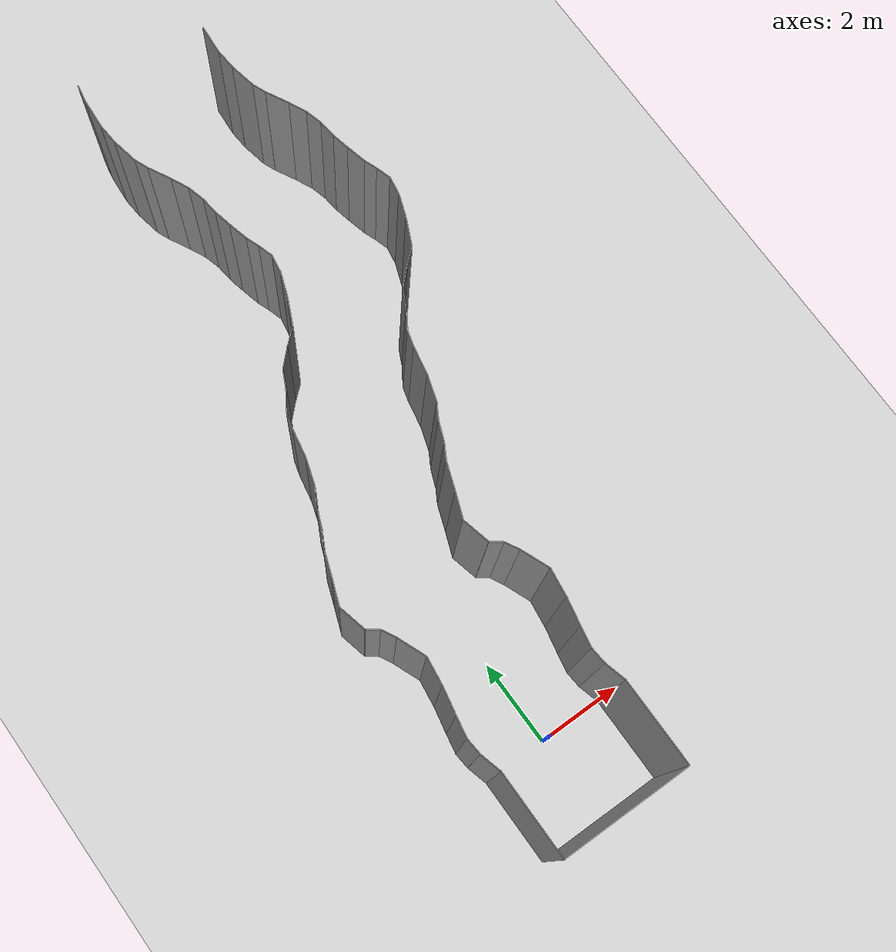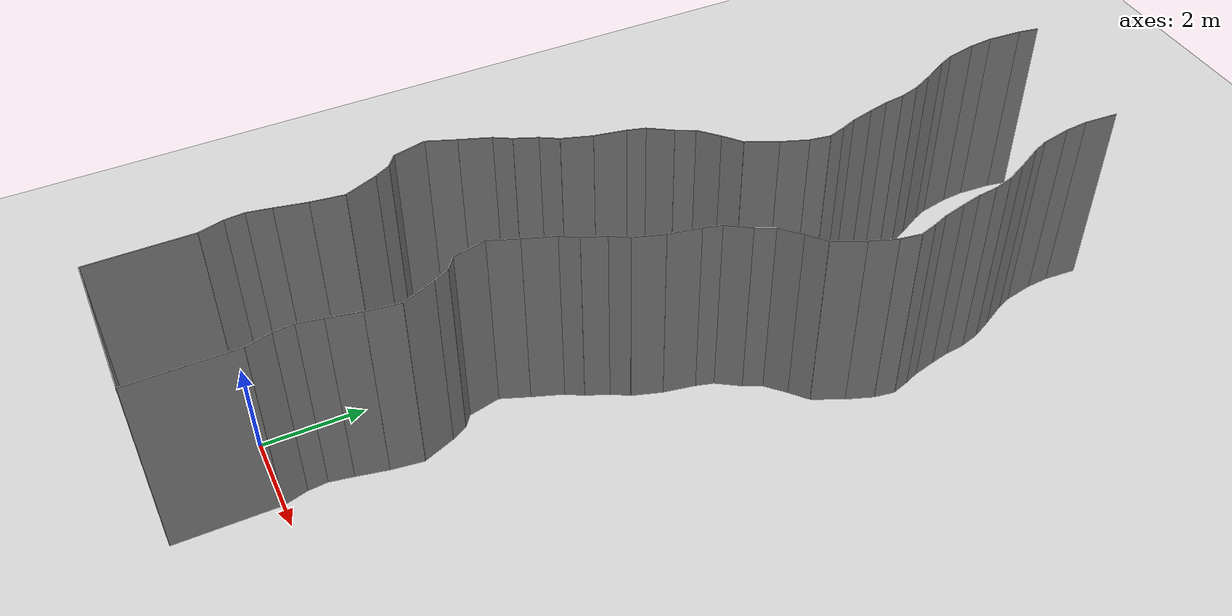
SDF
<sdf version="1.6">
 <world name="default">
  <model name="ground_plane">
   <static>1</static>
   <link name="link">
    <collision name="collision">
     <geometry><plane><normal>0 0 1</normal><size>200 200</size></plane></geometry>
     <surface><friction><ode><mu>100</mu><mu2>50</mu2></ode></friction></surface>
    </collision>
    <visual name="visual">
     <cast_shadows>0</cast_shadows>
     <geometry><plane><normal>0 0 1</normal><size>200 200</size></plane></geometry>
     <material>
      <script><uri>file://media/materials/scripts/gazebo.material</uri><name>Gazebo/Grey</name></script>
     </material>
    </visual>
   </link>
   <pose>0 100 0 0 -0 0</pose>
  </model>
  <model name="wall_back">
   <static>1</static>
   <pose>0.0 -2 2 0.0 0 0.0</pose>
   <link name="link">
    <collision name="collision"><geometry><box><size>3 0.02 4</size></box></geometry></collision>
    <visual name="visual">
     <material>
      <script><name>Gazebo/Grey</name><uri>file://media/materials/scripts/gazebo.material</uri></script>
     </material>
     <geometry><box><size>3 0.02 4</size></box></geometry>
    </visual>
   </link>
  </model>
  <model name="wall_left">
   <static>1</static>
   <pose>1.5 -1 2 0 0 0.00</pose>
   <link name="link">
    <collision name="collision"><geometry><box><size>0.02 2 4</size></box></geometry></collision>
    <visual name="visual">
     <material>
      <script><name>Gazebo/Grey</name><uri>file://media/materials/scripts/gazebo.material</uri></script>
     </material>
     <geometry><box><size>0.02 2 4</size></box></geometry>
    </visual>
   </link>
  </model>
  <model name="wall_right">
   <static>1</static>
   <pose>-1.5 -1 2 0 0 0.00</pose>
   <link name="link">
    <collision name="collision"><geometry><box><size>0.02 2 4</size></box></geometry></collision>
    <visual name="visual">
     <material>
      <script><name>Gazebo/Grey</name><uri>file://media/materials/scripts/gazebo.material</uri></script>
     </material>
     <geometry><box><size>0.02 2 4</size></box></geometry>
    </visual>
   </link>
  </model>
  <model name="wall_0">
   <static>1</static>
   <pose>-1.565739611500595 0.24088608216315852 2 0 0 0.2664197645561969</pose>
   <link name="link">
    <collision name="collision"><geometry><box><size>0.02 0.499390833317 4</size></box></geometry></collision>
    <visual name="visual">
     <material>
      <script><name>Gazebo/Grey</name><uri>file://media/materials/scripts/gazebo.material</uri></script>
     </material>
     <geometry><box><size>0.02 0.499390833317 4</size></box></geometry>
    </visual>
   </link>
  </model>
  <model name="wall_1">
   <static>1</static>
   <pose>1.434260388499405 0.24088608216315852 2 0 0 0.2664197645561969</pose>
   <link name="link">
    <collision name="collision"><geometry><box><size>0.02 0.499390833317 4</size></box></geometry></collision>
    <visual name="visual">
     <material>
      <script><name>Gazebo/Grey</name><uri>file://media/materials/scripts/gazebo.material</uri></script>
     </material>
     <geometry><box><size>0.02 0.499390833317 4</size></box></geometry>
    </visual>
   </link>
  </model>
  <model name="wall_2">
   <static>1</static>
   <pose>-1.6483853456226922 0.6741960241709141 2 0 0 0.08763374060429269</pose>
   <link name="link">
    <collision name="collision"><geometry><box><size>0.02 0.386330215332 4</size></box></geometry></collision>
    <visual name="visual">
     <material>
      <script><name>Gazebo/Grey</name><uri>file://media/materials/scripts/gazebo.material</uri></script>
     </material>
     <geometry><box><size>0.02 0.386330215332 4</size></box></geometry>
    </visual>
   </link>
  </model>
  <model name="wall_3">
   <static>1</static>
   <pose>1.3516146543773078 0.6741960241709141 2 0 0 0.08763374060429269</pose>
   <link name="link">
    <collision name="collision"><geometry><box><size>0.02 0.386330215332 4</size></box></geometry></collision>
    <visual name="visual">
     <material>
      <script><name>Gazebo/Grey</name><uri>file://media/materials/scripts/gazebo.material</uri></script>
     </material>
     <geometry><box><size>0.02 0.386330215332 4</size></box></geometry>
    </visual>
   </link>
  </model>
  <model name="wall_4">
   <static>1</static>
   <pose>-1.6224939898118325 1.0997063646286278 2 0 0 -0.18158938076499426</pose>
   <link name="link">
    <collision name="collision"><geometry><box><size>0.02 0.473965954916 4</size></box></geometry></collision>
    <visual name="visual">
     <material>
      <script><name>Gazebo/Grey</name><uri>file://media/materials/scripts/gazebo.material</uri></script>
     </material>
     <geometry><box><size>0.02 0.473965954916 4</size></box></geometry>
    </visual>
   </link>
  </model>
  <model name="wall_5">
   <static>1</static>
   <pose>1.3775060101881675 1.0997063646286278 2 0 0 -0.18158938076499426</pose>
   <link name="link">
    <collision name="collision"><geometry><box><size>0.02 0.473965954916 4</size></box></geometry></collision>
    <visual name="visual">
     <material>
      <script><name>Gazebo/Grey</name><uri>file://media/materials/scripts/gazebo.material</uri></script>
     </material>
     <geometry><box><size>0.02 0.473965954916 4</size></box></geometry>
    </visual>
   </link>
  </model>
  <model name="wall_6">
   <static>1</static>
   <pose>-1.5172936481979964 1.6427296880698645 2 0 0 -0.1986842445359933</pose>
   <link name="link">
    <collision name="collision"><geometry><box><size>0.02 0.632313099265 4</size></box></geometry></collision>
    <visual name="visual">
     <material>
      <script><name>Gazebo/Grey</name><uri>file://media/materials/scripts/gazebo.material</uri></script>
     </material>
     <geometry><box><size>0.02 0.632313099265 4</size></box></geometry>
    </visual>
   </link>
  </model>
  <model name="wall_7">
   <static>1</static>
   <pose>1.4827063518020036 1.6427296880698645 2 0 0 -0.1986842445359933</pose>
   <link name="link">
    <collision name="collision"><geometry><box><size>0.02 0.632313099265 4</size></box></geometry></collision>
    <visual name="visual">
     <material>
      <script><name>Gazebo/Grey</name><uri>file://media/materials/scripts/gazebo.material</uri></script>
     </material>
     <geometry><box><size>0.02 0.632313099265 4</size></box></geometry>
    </visual>
   </link>
  </model>
  <model name="wall_8">
   <static>1</static>
   <pose>-1.4136420460431394 2.273343459773019 2 0 0 -0.12792773836013294</pose>
   <link name="link">
    <collision name="collision"><geometry><box><size>0.02 0.646637923972 4</size></box></geometry></collision>
    <visual name="visual">
     <material>
      <script><name>Gazebo/Grey</name><uri>file://media/materials/scripts/gazebo.material</uri></script>
     </material>
     <geometry><box><size>0.02 0.646637923972 4</size></box></geometry>
    </visual>
   </link>
  </model>
  <model name="wall_9">
   <static>1</static>
   <pose>1.5863579539568606 2.273343459773019 2 0 0 -0.12792773836013294</pose>
   <link name="link">
    <collision name="collision"><geometry><box><size>0.02 0.646637923972 4</size></box></geometry></collision>
    <visual name="visual">
     <material>
      <script><name>Gazebo/Grey</name><uri>file://media/materials/scripts/gazebo.material</uri></script>
     </material>
     <geometry><box><size>0.02 0.646637923972 4</size></box></geometry>
    </visual>
   </link>
  </model>
  <model name="wall_10">
   <static>1</static>
   <pose>-1.5021101102420251 2.9108111238589625 2 0 0 0.38864477231435324</pose>
   <link name="link">
    <collision name="collision"><geometry><box><size>0.02 0.684639522495 4</size></box></geometry></collision>
    <visual name="visual">
     <material>
      <script><name>Gazebo/Grey</name><uri>file://media/materials/scripts/gazebo.material</uri></script>
     </material>
     <geometry><box><size>0.02 0.684639522495 4</size></box></geometry>
    </visual>
   </link>
  </model>
  <model name="wall_11">
   <static>1</static>
   <pose>1.4978898897579749 2.9108111238589625 2 0 0 0.38864477231435324</pose>
   <link name="link">
    <collision name="collision"><geometry><box><size>0.02 0.684639522495 4</size></box></geometry></collision>
    <visual name="visual">
     <material>
      <script><name>Gazebo/Grey</name><uri>file://media/materials/scripts/gazebo.material</uri></script>
     </material>
     <geometry><box><size>0.02 0.684639522495 4</size></box></geometry>
    </visual>
   </link>
  </model>
  <model name="wall_12">
   <static>1</static>
   <pose>-1.7144954054000514 3.380717711754754 2 0 0 0.4950621232531164</pose>
   <link name="link">
    <collision name="collision"><geometry><box><size>0.02 0.348014619869 4</size></box></geometry></collision>
    <visual name="visual">
     <material>
      <script><name>Gazebo/Grey</name><uri>file://media/materials/scripts/gazebo.material</uri></script>
     </material>
     <geometry><box><size>0.02 0.348014619869 4</size></box></geometry>
    </visual>
   </link>
  </model>
  <model name="wall_13">
   <static>1</static>
   <pose>1.2855045945999486 3.380717711754754 2 0 0 0.4950621232531164</pose>
   <link name="link">
    <collision name="collision"><geometry><box><size>0.02 0.348014619869 4</size></box></geometry></collision>
    <visual name="visual">
     <material>
      <script><name>Gazebo/Grey</name><uri>file://media/materials/scripts/gazebo.material</uri></script>
     </material>
     <geometry><box><size>0.02 0.348014619869 4</size></box></geometry>
    </visual>
   </link>
  </model>
  <model name="wall_14">
   <static>1</static>
   <pose>-1.9208575377017132 3.6237284901054827 2 0 0 0.9423389882361022</pose>
   <link name="link">
    <collision name="collision"><geometry><box><size>0.02 0.305818340294 4</size></box></geometry></collision>
    <visual name="visual">
     <material>
      <script><name>Gazebo/Grey</name><uri>file://media/materials/scripts/gazebo.material</uri></script>
     </material>
     <geometry><box><size>0.02 0.305818340294 4</size></box></geometry>
    </visual>
   </link>
  </model>
  <model name="wall_15">
   <static>1</static>
   <pose>1.0791424622982868 3.6237284901054827 2 0 0 0.9423389882361022</pose>
   <link name="link">
    <collision name="collision"><geometry><box><size>0.02 0.305818340294 4</size></box></geometry></collision>
    <visual name="visual">
     <material>
      <script><name>Gazebo/Grey</name><uri>file://media/materials/scripts/gazebo.material</uri></script>
     </material>
     <geometry><box><size>0.02 0.305818340294 4</size></box></geometry>
    </visual>
   </link>
  </model>
  <model name="wall_16">
   <static>1</static>
   <pose>-2.121650649095559 4.036127716997495 2 0 0 0.2346606584070033</pose>
   <link name="link">
    <collision name="collision"><geometry><box><size>0.02 0.663184296406 4</size></box></geometry></collision>
    <visual name="visual">
     <material>
      <script><name>Gazebo/Grey</name><uri>file://media/materials/scripts/gazebo.material</uri></script>
     </material>
     <geometry><box><size>0.02 0.663184296406 4</size></box></geometry>
    </visual>
   </link>
  </model>
  <model name="wall_17">
   <static>1</static>
   <pose>0.8783493509044411 4.036127716997495 2 0 0 0.2346606584070033</pose>
   <link name="link">
    <collision name="collision"><geometry><box><size>0.02 0.663184296406 4</size></box></geometry></collision>
    <visual name="visual">
     <material>
      <script><name>Gazebo/Grey</name><uri>file://media/materials/scripts/gazebo.material</uri></script>
     </material>
     <geometry><box><size>0.02 0.663184296406 4</size></box></geometry>
    </visual>
   </link>
  </model>
  <model name="wall_18">
   <static>1</static>
   <pose>-2.091013936563034 4.639162786583809 2 0 0 -0.36667606427582305</pose>
   <link name="link">
    <collision name="collision"><geometry><box><size>0.02 0.601014466567 4</size></box></geometry></collision>
    <visual name="visual">
     <material>
      <script><name>Gazebo/Grey</name><uri>file://media/materials/scripts/gazebo.material</uri></script>
     </material>
     <geometry><box><size>0.02 0.601014466567 4</size></box></geometry>
    </visual>
   </link>
  </model>
  <model name="wall_19">
   <static>1</static>
   <pose>0.908986063436966 4.639162786583809 2 0 0 -0.36667606427582305</pose>
   <link name="link">
    <collision name="collision"><geometry><box><size>0.02 0.601014466567 4</size></box></geometry></collision>
    <visual name="visual">
     <material>
      <script><name>Gazebo/Grey</name><uri>file://media/materials/scripts/gazebo.material</uri></script>
     </material>
     <geometry><box><size>0.02 0.601014466567 4</size></box></geometry>
    </visual>
   </link>
  </model>
  <model name="wall_20">
   <static>1</static>
   <pose>-1.8745241503220937 5.220819056604774 2 0 0 -0.3465795173068685</pose>
   <link name="link">
    <collision name="collision"><geometry><box><size>0.02 0.640324648395 4</size></box></geometry></collision>
    <visual name="visual">
     <material>
      <script><name>Gazebo/Grey</name><uri>file://media/materials/scripts/gazebo.material</uri></script>
     </material>
     <geometry><box><size>0.02 0.640324648395 4</size></box></geometry>
    </visual>
   </link>
  </model>
  <model name="wall_21">
   <static>1</static>
   <pose>1.1254758496779063 5.220819056604774 2 0 0 -0.3465795173068685</pose>
   <link name="link">
    <collision name="collision"><geometry><box><size>0.02 0.640324648395 4</size></box></geometry></collision>
    <visual name="visual">
     <material>
      <script><name>Gazebo/Grey</name><uri>file://media/materials/scripts/gazebo.material</uri></script>
     </material>
     <geometry><box><size>0.02 0.640324648395 4</size></box></geometry>
    </visual>
   </link>
  </model>
  <model name="wall_22">
   <static>1</static>
   <pose>-1.6711643647316854 5.685106192930393 2 0 0 -0.5254573671960013</pose>
   <link name="link">
    <collision name="collision"><geometry><box><size>0.02 0.377211075557 4</size></box></geometry></collision>
    <visual name="visual">
     <material>
      <script><name>Gazebo/Grey</name><uri>file://media/materials/scripts/gazebo.material</uri></script>
     </material>
     <geometry><box><size>0.02 0.377211075557 4</size></box></geometry>
    </visual>
   </link>
  </model>
  <model name="wall_23">
   <static>1</static>
   <pose>1.3288356352683146 5.685106192930393 2 0 0 -0.5254573671960013</pose>
   <link name="link">
    <collision name="collision"><geometry><box><size>0.02 0.377211075557 4</size></box></geometry></collision>
    <visual name="visual">
     <material>
      <script><name>Gazebo/Grey</name><uri>file://media/materials/scripts/gazebo.material</uri></script>
     </material>
     <geometry><box><size>0.02 0.377211075557 4</size></box></geometry>
    </visual>
   </link>
  </model>
  <model name="wall_24">
   <static>1</static>
   <pose>-1.4870901184349976 6.069999245519834 2 0 0 -0.3835177855792076</pose>
   <link name="link">
    <collision name="collision"><geometry><box><size>0.02 0.478202283776 4</size></box></geometry></collision>
    <visual name="visual">
     <material>
      <script><name>Gazebo/Grey</name><uri>file://media/materials/scripts/gazebo.material</uri></script>
     </material>
     <geometry><box><size>0.02 0.478202283776 4</size></box></geometry>
    </visual>
   </link>
  </model>
  <model name="wall_25">
   <static>1</static>
   <pose>1.5129098815650024 6.069999245519834 2 0 0 -0.3835177855792076</pose>
   <link name="link">
    <collision name="collision"><geometry><box><size>0.02 0.478202283776 4</size></box></geometry></collision>
    <visual name="visual">
     <material>
      <script><name>Gazebo/Grey</name><uri>file://media/materials/scripts/gazebo.material</uri></script>
     </material>
     <geometry><box><size>0.02 0.478202283776 4</size></box></geometry>
    </visual>
   </link>
  </model>
  <model name="wall_26">
   <static>1</static>
   <pose>-1.2980619678183172 6.460374131454251 2 0 0 -0.5332999212025807</pose>
   <link name="link">
    <collision name="collision"><geometry><box><size>0.02 0.391677572917 4</size></box></geometry></collision>
    <visual name="visual">
     <material>
      <script><name>Gazebo/Grey</name><uri>file://media/materials/scripts/gazebo.material</uri></script>
     </material>
     <geometry><box><size>0.02 0.391677572917 4</size></box></geometry>
    </visual>
   </link>
  </model>
  <model name="wall_27">
   <static>1</static>
   <pose>1.7019380321816828 6.460374131454251 2 0 0 -0.5332999212025807</pose>
   <link name="link">
    <collision name="collision"><geometry><box><size>0.02 0.391677572917 4</size></box></geometry></collision>
    <visual name="visual">
     <material>
      <script><name>Gazebo/Grey</name><uri>file://media/materials/scripts/gazebo.material</uri></script>
     </material>
     <geometry><box><size>0.02 0.391677572917 4</size></box></geometry>
    </visual>
   </link>
  </model>
  <model name="wall_28">
   <static>1</static>
   <pose>-1.104667693843315 6.921692049198197 2 0 0 -0.31025566221828826</pose>
   <link name="link">
    <collision name="collision"><geometry><box><size>0.02 0.614697285239 4</size></box></geometry></collision>
    <visual name="visual">
     <material>
      <script><name>Gazebo/Grey</name><uri>file://media/materials/scripts/gazebo.material</uri></script>
     </material>
     <geometry><box><size>0.02 0.614697285239 4</size></box></geometry>
    </visual>
   </link>
  </model>
  <model name="wall_29">
   <static>1</static>
   <pose>1.895332306156685 6.921692049198197 2 0 0 -0.31025566221828826</pose>
   <link name="link">
    <collision name="collision"><geometry><box><size>0.02 0.614697285239 4</size></box></geometry></collision>
    <visual name="visual">
     <material>
      <script><name>Gazebo/Grey</name><uri>file://media/materials/scripts/gazebo.material</uri></script>
     </material>
     <geometry><box><size>0.02 0.614697285239 4</size></box></geometry>
    </visual>
   </link>
  </model>
  <model name="wall_30">
   <static>1</static>
   <pose>-0.9524156585972603 7.527631878212156 2 0 0 -0.18436278185102173</pose>
   <link name="link">
    <collision name="collision"><geometry><box><size>0.02 0.637331445591 4</size></box></geometry></collision>
    <visual name="visual">
     <material>
      <script><name>Gazebo/Grey</name><uri>file://media/materials/scripts/gazebo.material</uri></script>
     </material>
     <geometry><box><size>0.02 0.637331445591 4</size></box></geometry>
    </visual>
   </link>
  </model>
  <model name="wall_31">
   <static>1</static>
   <pose>2.0475843414027395 7.527631878212156 2 0 0 -0.18436278185102173</pose>
   <link name="link">
    <collision name="collision"><geometry><box><size>0.02 0.637331445591 4</size></box></geometry></collision>
    <visual name="visual">
     <material>
      <script><name>Gazebo/Grey</name><uri>file://media/materials/scripts/gazebo.material</uri></script>
     </material>
     <geometry><box><size>0.02 0.637331445591 4</size></box></geometry>
    </visual>
   </link>
  </model>
  <model name="wall_32">
   <static>1</static>
   <pose>-0.8461826182124886 8.015372793796 2 0 0 -0.26748370132998434</pose>
   <link name="link">
    <collision name="collision"><geometry><box><size>0.02 0.361817663133 4</size></box></geometry></collision>
    <visual name="visual">
     <material>
      <script><name>Gazebo/Grey</name><uri>file://media/materials/scripts/gazebo.material</uri></script>
     </material>
     <geometry><box><size>0.02 0.361817663133 4</size></box></geometry>
    </visual>
   </link>
  </model>
  <model name="wall_33">
   <static>1</static>
   <pose>2.1538173817875115 8.015372793796 2 0 0 -0.26748370132998434</pose>
   <link name="link">
    <collision name="collision"><geometry><box><size>0.02 0.361817663133 4</size></box></geometry></collision>
    <visual name="visual">
     <material>
      <script><name>Gazebo/Grey</name><uri>file://media/materials/scripts/gazebo.material</uri></script>
     </material>
     <geometry><box><size>0.02 0.361817663133 4</size></box></geometry>
    </visual>
   </link>
  </model>
  <model name="wall_34">
   <static>1</static>
   <pose>-0.6531005107113629 8.414410567422077 2 0 0 -0.574185349997685</pose>
   <link name="link">
    <collision name="collision"><geometry><box><size>0.02 0.534904384796 4</size></box></geometry></collision>
    <visual name="visual">
     <material>
      <script><name>Gazebo/Grey</name><uri>file://media/materials/scripts/gazebo.material</uri></script>
     </material>
     <geometry><box><size>0.02 0.534904384796 4</size></box></geometry>
    </visual>
   </link>
  </model>
  <model name="wall_35">
   <static>1</static>
   <pose>2.3468994892886372 8.414410567422077 2 0 0 -0.574185349997685</pose>
   <link name="link">
    <collision name="collision"><geometry><box><size>0.02 0.534904384796 4</size></box></geometry></collision>
    <visual name="visual">
     <material>
      <script><name>Gazebo/Grey</name><uri>file://media/materials/scripts/gazebo.material</uri></script>
     </material>
     <geometry><box><size>0.02 0.534904384796 4</size></box></geometry>
    </visual>
   </link>
  </model>
  <model name="wall_36">
   <static>1</static>
   <pose>-0.4227081682132432 8.815440413093574 2 0 0 -0.44945702265359894</pose>
   <link name="link">
    <collision name="collision"><geometry><box><size>0.02 0.391852804454 4</size></box></geometry></collision>
    <visual name="visual">
     <material>
      <script><name>Gazebo/Grey</name><uri>file://media/materials/scripts/gazebo.material</uri></script>
     </material>
     <geometry><box><size>0.02 0.391852804454 4</size></box></geometry>
    </visual>
   </link>
  </model>
  <model name="wall_37">
   <static>1</static>
   <pose>2.5772918317867566 8.815440413093574 2 0 0 -0.44945702265359894</pose>
   <link name="link">
    <collision name="collision"><geometry><box><size>0.02 0.391852804454 4</size></box></geometry></collision>
    <visual name="visual">
     <material>
      <script><name>Gazebo/Grey</name><uri>file://media/materials/scripts/gazebo.material</uri></script>
     </material>
     <geometry><box><size>0.02 0.391852804454 4</size></box></geometry>
    </visual>
   </link>
  </model>
  <model name="wall_38">
   <static>1</static>
   <pose>-0.16149954600914299 9.164619360388333 2 0 0 -0.7950650333283734</pose>
   <link name="link">
    <collision name="collision"><geometry><box><size>0.02 0.49329300945 4</size></box></geometry></collision>
    <visual name="visual">
     <material>
      <script><name>Gazebo/Grey</name><uri>file://media/materials/scripts/gazebo.material</uri></script>
     </material>
     <geometry><box><size>0.02 0.49329300945 4</size></box></geometry>
    </visual>
   </link>
  </model>
  <model name="wall_39">
   <static>1</static>
   <pose>2.838500453990857 9.164619360388333 2 0 0 -0.7950650333283734</pose>
   <link name="link">
    <collision name="collision"><geometry><box><size>0.02 0.49329300945 4</size></box></geometry></collision>
    <visual name="visual">
     <material>
      <script><name>Gazebo/Grey</name><uri>file://media/materials/scripts/gazebo.material</uri></script>
     </material>
     <geometry><box><size>0.02 0.49329300945 4</size></box></geometry>
    </visual>
   </link>
  </model>
  <model name="wall_40">
   <static>1</static>
   <pose>0.180669150913259 9.481449800055413 2 0 0 -0.8560927773171492</pose>
   <link name="link">
    <collision name="collision"><geometry><box><size>0.02 0.439794083715 4</size></box></geometry></collision>
    <visual name="visual">
     <material>
      <script><name>Gazebo/Grey</name><uri>file://media/materials/scripts/gazebo.material</uri></script>
     </material>
     <geometry><box><size>0.02 0.439794083715 4</size></box></geometry>
    </visual>
   </link>
  </model>
  <model name="wall_41">
   <static>1</static>
   <pose>3.180669150913259 9.481449800055413 2 0 0 -0.8560927773171492</pose>
   <link name="link">
    <collision name="collision"><geometry><box><size>0.02 0.439794083715 4</size></box></geometry></collision>
    <visual name="visual">
     <material>
      <script><name>Gazebo/Grey</name><uri>file://media/materials/scripts/gazebo.material</uri></script>
     </material>
     <geometry><box><size>0.02 0.439794083715 4</size></box></geometry>
    </visual>
   </link>
  </model>
  <model name="wall_42">
   <static>1</static>
   <pose>0.48522603566532 9.92372573289427 2 0 0 -0.4347845088825791</pose>
   <link name="link">
    <collision name="collision"><geometry><box><size>0.02 0.65748557552 4</size></box></geometry></collision>
    <visual name="visual">
     <material>
      <script><name>Gazebo/Grey</name><uri>file://media/materials/scripts/gazebo.material</uri></script>
     </material>
     <geometry><box><size>0.02 0.65748557552 4</size></box></geometry>
    </visual>
   </link>
  </model>
  <model name="wall_43">
   <static>1</static>
   <pose>3.48522603566532 9.92372573289427 2 0 0 -0.4347845088825791</pose>
   <link name="link">
    <collision name="collision"><geometry><box><size>0.02 0.65748557552 4</size></box></geometry></collision>
    <visual name="visual">
     <material>
      <script><name>Gazebo/Grey</name><uri>file://media/materials/scripts/gazebo.material</uri></script>
     </material>
     <geometry><box><size>0.02 0.65748557552 4</size></box></geometry>
    </visual>
   </link>
  </model>
  <model name="wall_44">
   <static>1</static>
   <pose>0.718601578090264 10.481962678245711 2 0 0 -0.34988975049354076</pose>
   <link name="link">
    <collision name="collision"><geometry><box><size>0.02 0.55370918265 4</size></box></geometry></collision>
    <visual name="visual">
     <material>
      <script><name>Gazebo/Grey</name><uri>file://media/materials/scripts/gazebo.material</uri></script>
     </material>
     <geometry><box><size>0.02 0.55370918265 4</size></box></geometry>
    </visual>
   </link>
  </model>
  <model name="wall_45">
   <static>1</static>
   <pose>3.718601578090264 10.481962678245711 2 0 0 -0.34988975049354076</pose>
   <link name="link">
    <collision name="collision"><geometry><box><size>0.02 0.55370918265 4</size></box></geometry></collision>
    <visual name="visual">
     <material>
      <script><name>Gazebo/Grey</name><uri>file://media/materials/scripts/gazebo.material</uri></script>
     </material>
     <geometry><box><size>0.02 0.55370918265 4</size></box></geometry>
    </visual>
   </link>
  </model>
  <model name="wall_46">
   <static>1</static>
   <pose>0.8462657989627398 10.945505000200539 2 0 0 -0.15964282527761284</pose>
   <link name="link">
    <collision name="collision"><geometry><box><size>0.02 0.412165462002 4</size></box></geometry></collision>
    <visual name="visual">
     <material>
      <script><name>Gazebo/Grey</name><uri>file://media/materials/scripts/gazebo.material</uri></script>
     </material>
     <geometry><box><size>0.02 0.412165462002 4</size></box></geometry>
    </visual>
   </link>
  </model>
  <model name="wall_47">
   <static>1</static>
   <pose>3.84626579896274 10.945505000200539 2 0 0 -0.15964282527761284</pose>
   <link name="link">
    <collision name="collision"><geometry><box><size>0.02 0.412165462002 4</size></box></geometry></collision>
    <visual name="visual">
     <material>
      <script><name>Gazebo/Grey</name><uri>file://media/materials/scripts/gazebo.material</uri></script>
     </material>
     <geometry><box><size>0.02 0.412165462002 4</size></box></geometry>
    </visual>
   </link>
  </model>
  <model name="wall_48">
   <static>1</static>
   <pose>0.8268747342737711 11.315957409230812 2 0 0 0.3027031251017241</pose>
   <link name="link">
    <collision name="collision"><geometry><box><size>0.02 0.349888364928 4</size></box></geometry></collision>
    <visual name="visual">
     <material>
      <script><name>Gazebo/Grey</name><uri>file://media/materials/scripts/gazebo.material</uri></script>
     </material>
     <geometry><box><size>0.02 0.349888364928 4</size></box></geometry>
    </visual>
   </link>
  </model>
  <model name="wall_49">
   <static>1</static>
   <pose>3.8268747342737712 11.315957409230812 2 0 0 0.3027031251017241</pose>
   <link name="link">
    <collision name="collision"><geometry><box><size>0.02 0.349888364928 4</size></box></geometry></collision>
    <visual name="visual">
     <material>
      <script><name>Gazebo/Grey</name><uri>file://media/materials/scripts/gazebo.material</uri></script>
     </material>
     <geometry><box><size>0.02 0.349888364928 4</size></box></geometry>
    </visual>
   </link>
  </model>
  <model name="wall_50">
   <static>1</static>
   <pose>0.719432858765186 11.626625338531646 2 0 0 0.3673562246984743</pose>
   <link name="link">
    <collision name="collision"><geometry><box><size>0.02 0.307898403709 4</size></box></geometry></collision>
    <visual name="visual">
     <material>
      <script><name>Gazebo/Grey</name><uri>file://media/materials/scripts/gazebo.material</uri></script>
     </material>
     <geometry><box><size>0.02 0.307898403709 4</size></box></geometry>
    </visual>
   </link>
  </model>
  <model name="wall_51">
   <static>1</static>
   <pose>3.719432858765186 11.626625338531646 2 0 0 0.3673562246984743</pose>
   <link name="link">
    <collision name="collision"><geometry><box><size>0.02 0.307898403709 4</size></box></geometry></collision>
    <visual name="visual">
     <material>
      <script><name>Gazebo/Grey</name><uri>file://media/materials/scripts/gazebo.material</uri></script>
     </material>
     <geometry><box><size>0.02 0.307898403709 4</size></box></geometry>
    </visual>
   </link>
  </model>
  <model name="wall_52">
   <static>1</static>
   <pose>0.6073412550380806 11.997077843059605 2 0 0 0.2454233593464097</pose>
   <link name="link">
    <collision name="collision"><geometry><box><size>0.02 0.467560203175 4</size></box></geometry></collision>
    <visual name="visual">
     <material>
      <script><name>Gazebo/Grey</name><uri>file://media/materials/scripts/gazebo.material</uri></script>
     </material>
     <geometry><box><size>0.02 0.467560203175 4</size></box></geometry>
    </visual>
   </link>
  </model>
  <model name="wall_53">
   <static>1</static>
   <pose>3.6073412550380803 11.997077843059605 2 0 0 0.2454233593464097</pose>
   <link name="link">
    <collision name="collision"><geometry><box><size>0.02 0.467560203175 4</size></box></geometry></collision>
    <visual name="visual">
     <material>
      <script><name>Gazebo/Grey</name><uri>file://media/materials/scripts/gazebo.material</uri></script>
     </material>
     <geometry><box><size>0.02 0.467560203175 4</size></box></geometry>
    </visual>
   </link>
  </model>
  <model name="wall_54">
   <static>1</static>
   <pose>0.5068886698628923 12.420343863029036 2 0 0 0.21860594444248038</pose>
   <link name="link">
    <collision name="collision"><geometry><box><size>0.02 0.402563201123 4</size></box></geometry></collision>
    <visual name="visual">
     <material>
      <script><name>Gazebo/Grey</name><uri>file://media/materials/scripts/gazebo.material</uri></script>
     </material>
     <geometry><box><size>0.02 0.402563201123 4</size></box></geometry>
    </visual>
   </link>
  </model>
  <model name="wall_55">
   <static>1</static>
   <pose>3.5068886698628923 12.420343863029036 2 0 0 0.21860594444248038</pose>
   <link name="link">
    <collision name="collision"><geometry><box><size>0.02 0.402563201123 4</size></box></geometry></collision>
    <visual name="visual">
     <material>
      <script><name>Gazebo/Grey</name><uri>file://media/materials/scripts/gazebo.material</uri></script>
     </material>
     <geometry><box><size>0.02 0.402563201123 4</size></box></geometry>
    </visual>
   </link>
  </model>
  <model name="wall_56">
   <static>1</static>
   <pose>0.4407977481680575 12.813623418107898 2 0 0 0.11353667303652037</pose>
   <link name="link">
    <collision name="collision"><geometry><box><size>0.02 0.396127032671 4</size></box></geometry></collision>
    <visual name="visual">
     <material>
      <script><name>Gazebo/Grey</name><uri>file://media/materials/scripts/gazebo.material</uri></script>
     </material>
     <geometry><box><size>0.02 0.396127032671 4</size></box></geometry>
    </visual>
   </link>
  </model>
  <model name="wall_57">
   <static>1</static>
   <pose>3.4407977481680576 12.813623418107898 2 0 0 0.11353667303652037</pose>
   <link name="link">
    <collision name="collision"><geometry><box><size>0.02 0.396127032671 4</size></box></geometry></collision>
    <visual name="visual">
     <material>
      <script><name>Gazebo/Grey</name><uri>file://media/materials/scripts/gazebo.material</uri></script>
     </material>
     <geometry><box><size>0.02 0.396127032671 4</size></box></geometry>
    </visual>
   </link>
  </model>
  <model name="wall_58">
   <static>1</static>
   <pose>0.36515695193584824 13.204656878645666 2 0 0 0.267333007421403</pose>
   <link name="link">
    <collision name="collision"><geometry><box><size>0.02 0.402798158126 4</size></box></geometry></collision>
    <visual name="visual">
     <material>
      <script><name>Gazebo/Grey</name><uri>file://media/materials/scripts/gazebo.material</uri></script>
     </material>
     <geometry><box><size>0.02 0.402798158126 4</size></box></geometry>
    </visual>
   </link>
  </model>
  <model name="wall_59">
   <static>1</static>
   <pose>3.365156951935848 13.204656878645666 2 0 0 0.267333007421403</pose>
   <link name="link">
    <collision name="collision"><geometry><box><size>0.02 0.402798158126 4</size></box></geometry></collision>
    <visual name="visual">
     <material>
      <script><name>Gazebo/Grey</name><uri>file://media/materials/scripts/gazebo.material</uri></script>
     </material>
     <geometry><box><size>0.02 0.402798158126 4</size></box></geometry>
    </visual>
   </link>
  </model>
  <model name="wall_60">
   <static>1</static>
   <pose>0.21986742679600613 13.59129624452851 2 0 0 0.4464155476808237</pose>
   <link name="link">
    <collision name="collision"><geometry><box><size>0.02 0.426594511705 4</size></box></geometry></collision>
    <visual name="visual">
     <material>
      <script><name>Gazebo/Grey</name><uri>file://media/materials/scripts/gazebo.material</uri></script>
     </material>
     <geometry><box><size>0.02 0.426594511705 4</size></box></geometry>
    </visual>
   </link>
  </model>
  <model name="wall_61">
   <static>1</static>
   <pose>3.2198674267960063 13.59129624452851 2 0 0 0.4464155476808237</pose>
   <link name="link">
    <collision name="collision"><geometry><box><size>0.02 0.426594511705 4</size></box></geometry></collision>
    <visual name="visual">
     <material>
      <script><name>Gazebo/Grey</name><uri>file://media/materials/scripts/gazebo.material</uri></script>
     </material>
     <geometry><box><size>0.02 0.426594511705 4</size></box></geometry>
    </visual>
   </link>
  </model>
  <model name="wall_62">
   <static>1</static>
   <pose>-0.003983334640508013 14.030411827023395 2 0 0 0.4905192048228044</pose>
   <link name="link">
    <collision name="collision"><geometry><box><size>0.02 0.559402821146 4</size></box></geometry></collision>
    <visual name="visual">
     <material>
      <script><name>Gazebo/Grey</name><uri>file://media/materials/scripts/gazebo.material</uri></script>
     </material>
     <geometry><box><size>0.02 0.559402821146 4</size></box></geometry>
    </visual>
   </link>
  </model>
  <model name="wall_63">
   <static>1</static>
   <pose>2.996016665359492 14.030411827023395 2 0 0 0.4905192048228044</pose>
   <link name="link">
    <collision name="collision"><geometry><box><size>0.02 0.559402821146 4</size></box></geometry></collision>
    <visual name="visual">
     <material>
      <script><name>Gazebo/Grey</name><uri>file://media/materials/scripts/gazebo.material</uri></script>
     </material>
     <geometry><box><size>0.02 0.559402821146 4</size></box></geometry>
    </visual>
   </link>
  </model>
  <model name="wall_64">
   <static>1</static>
   <pose>-0.19771399411953794 14.423380912522196 2 0 0 0.40078443767435995</pose>
   <link name="link">
    <collision name="collision"><geometry><box><size>0.02 0.31766904654 4</size></box></geometry></collision>
    <visual name="visual">
     <material>
      <script><name>Gazebo/Grey</name><uri>file://media/materials/scripts/gazebo.material</uri></script>
     </material>
     <geometry><box><size>0.02 0.31766904654 4</size></box></geometry>
    </visual>
   </link>
  </model>
  <model name="wall_65">
   <static>1</static>
   <pose>2.802286005880462 14.423380912522196 2 0 0 0.40078443767435995</pose>
   <link name="link">
    <collision name="collision"><geometry><box><size>0.02 0.31766904654 4</size></box></geometry></collision>
    <visual name="visual">
     <material>
      <script><name>Gazebo/Grey</name><uri>file://media/materials/scripts/gazebo.material</uri></script>
     </material>
     <geometry><box><size>0.02 0.31766904654 4</size></box></geometry>
    </visual>
   </link>
  </model>
  <model name="wall_66">
   <static>1</static>
   <pose>-0.31969712708149556 14.866710721906848 2 0 0 0.19933320098295287</pose>
   <link name="link">
    <collision name="collision"><geometry><box><size>0.02 0.606166995 4</size></box></geometry></collision>
    <visual name="visual">
     <material>
      <script><name>Gazebo/Grey</name><uri>file://media/materials/scripts/gazebo.material</uri></script>
     </material>
     <geometry><box><size>0.02 0.606166995 4</size></box></geometry>
    </visual>
   </link>
  </model>
  <model name="wall_67">
   <static>1</static>
   <pose>2.6803028729185043 14.866710721906848 2 0 0 0.19933320098295287</pose>
   <link name="link">
    <collision name="collision"><geometry><box><size>0.02 0.606166995 4</size></box></geometry></collision>
    <visual name="visual">
     <material>
      <script><name>Gazebo/Grey</name><uri>file://media/materials/scripts/gazebo.material</uri></script>
     </material>
     <geometry><box><size>0.02 0.606166995 4</size></box></geometry>
    </visual>
   </link>
  </model>
  <model name="wall_68">
   <static>1</static>
   <pose>-0.3987784305846526 15.395456126612928 2 0 0 0.08211535691355663</pose>
   <link name="link">
    <collision name="collision"><geometry><box><size>0.02 0.464893119417 4</size></box></geometry></collision>
    <visual name="visual">
     <material>
      <script><name>Gazebo/Grey</name><uri>file://media/materials/scripts/gazebo.material</uri></script>
     </material>
     <geometry><box><size>0.02 0.464893119417 4</size></box></geometry>
    </visual>
   </link>
  </model>
  <model name="wall_69">
   <static>1</static>
   <pose>2.6012215694153475 15.395456126612928 2 0 0 0.08211535691355663</pose>
   <link name="link">
    <collision name="collision"><geometry><box><size>0.02 0.464893119417 4</size></box></geometry></collision>
    <visual name="visual">
     <material>
      <script><name>Gazebo/Grey</name><uri>file://media/materials/scripts/gazebo.material</uri></script>
     </material>
     <geometry><box><size>0.02 0.464893119417 4</size></box></geometry>
    </visual>
   </link>
  </model>
  <model name="wall_70">
   <static>1</static>
   <pose>-0.39690742928138095 15.964101534812933 2 0 0 -0.062051105515447146</pose>
   <link name="link">
    <collision name="collision"><geometry><box><size>0.02 0.675263768146 4</size></box></geometry></collision>
    <visual name="visual">
     <material>
      <script><name>Gazebo/Grey</name><uri>file://media/materials/scripts/gazebo.material</uri></script>
     </material>
     <geometry><box><size>0.02 0.675263768146 4</size></box></geometry>
    </visual>
   </link>
  </model>
  <model name="wall_71">
   <static>1</static>
   <pose>2.603092570718619 15.964101534812933 2 0 0 -0.062051105515447146</pose>
   <link name="link">
    <collision name="collision"><geometry><box><size>0.02 0.675263768146 4</size></box></geometry></collision>
    <visual name="visual">
     <material>
      <script><name>Gazebo/Grey</name><uri>file://media/materials/scripts/gazebo.material</uri></script>
     </material>
     <geometry><box><size>0.02 0.675263768146 4</size></box></geometry>
    </visual>
   </link>
  </model>
  <model name="wall_72">
   <static>1</static>
   <pose>-0.3411308732283872 16.50026985802617 2 0 0 -0.1731578660085581</pose>
   <link name="link">
    <collision name="collision"><geometry><box><size>0.02 0.404420322567 4</size></box></geometry></collision>
    <visual name="visual">
     <material>
      <script><name>Gazebo/Grey</name><uri>file://media/materials/scripts/gazebo.material</uri></script>
     </material>
     <geometry><box><size>0.02 0.404420322567 4</size></box></geometry>
    </visual>
   </link>
  </model>
 </world>
</sdf>
